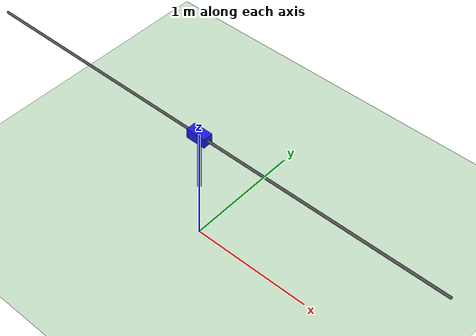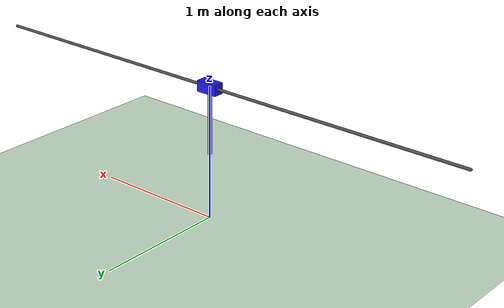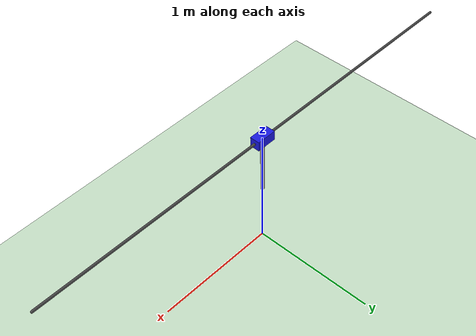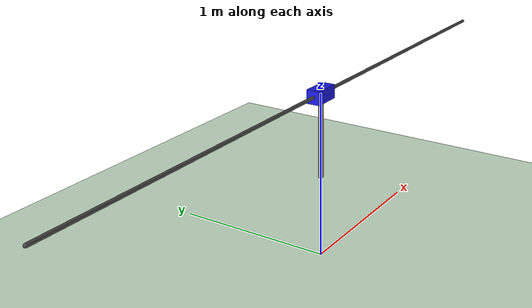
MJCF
<mujoco model="cartpole_energy_lqr">
    <option timestep="0.005" integrator="RK4" gravity="0 0 -9.81"/>

    <visual>
        <map znear="0.01" zfar="5"/>
    </visual>

    <worldbody>
        <light pos="0 -2 3" dir="0 1 -1" directional="true" castshadow="true"/>
        <geom name="floor" type="plane" size="2 2 0.1" rgba="0.8 0.9 0.8 1" contype="1" conaffinity="1"/>

        <camera name="cam_side" pos="0 -3 1.0" quat="0.7071 0.7071 0 0"/>

        <geom name="rail" type="capsule" fromto="-2 0 1.0  2 0 1.0" size="0.01" rgba="0.3 0.3 0.3 1" contype="0" conaffinity="0"/>

        <body name="cart" pos="0 0 1.0">
            <joint name="slider" type="slide" axis="1 0 0" damping="0.0"/>

            <inertial pos="0 0 0" mass="0.26" diaginertia="0.0026 0.0026 0.0026"/>
            <geom name="cart_geom" type="box" size="0.08 0.04 0.04" rgba="0.1 0.1 0.9 1"/>

            <body name="pole" pos="0 0 0">
                <joint name="hinge" type="hinge" axis="0 1 0" pos="0 0 0" damping="0.0"/>

                <inertial pos="0 0 -0.1" mass="0.04467" diaginertia="1.5e-4 1.5e-4 1.5e-4"/>

                <geom type="cylinder" fromto="0 0 0  0 0 -0.5" size="0.015" rgba="0.5 0.5 0.5 1" contype="0" conaffinity="0"/>

            </body>
        </body>
    </worldbody>

    <actuator>
        <motor name="force_x" joint="slider" gear="1" ctrllimited="true" ctrlrange="-10.0 10.0"/>
    </actuator>

    <sensor>
        <jointpos joint="slider" name="sens_x"/>
        <jointvel joint="slider" name="sens_x_dot"/>
        <jointpos joint="hinge" name="sens_theta"/>
        <jointvel joint="hinge" name="sens_theta_dot"/>
    </sensor>
</mujoco>
